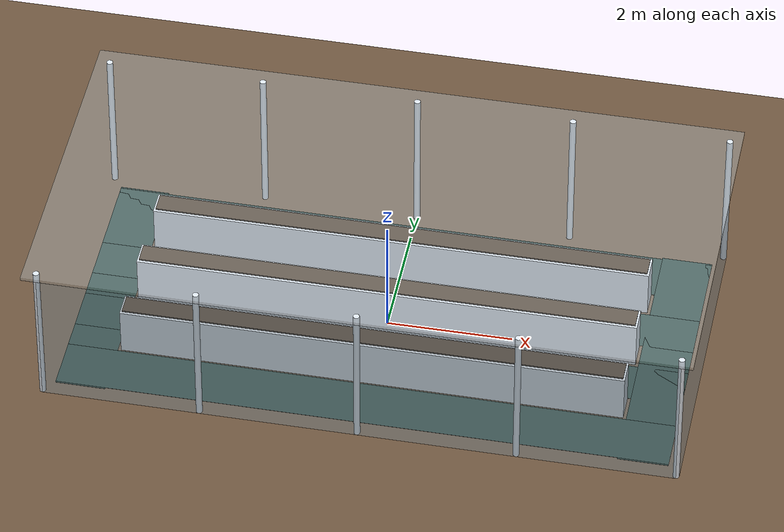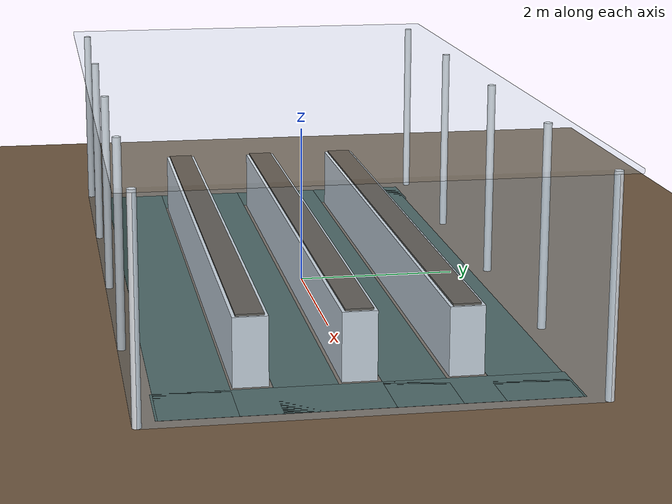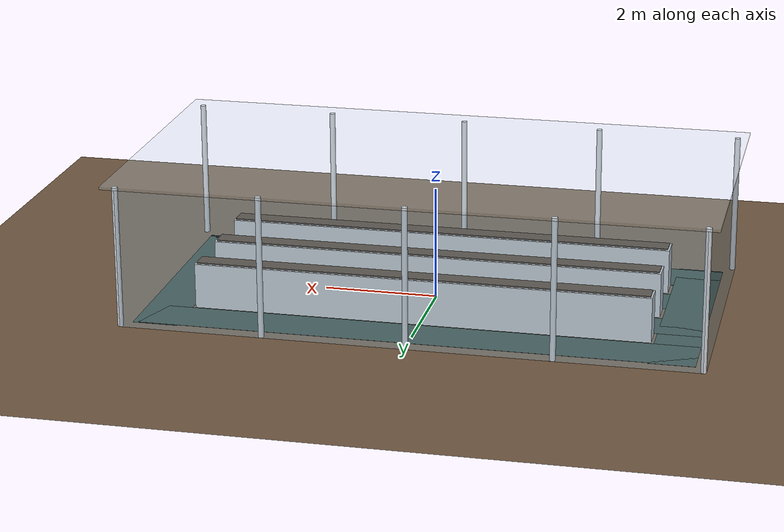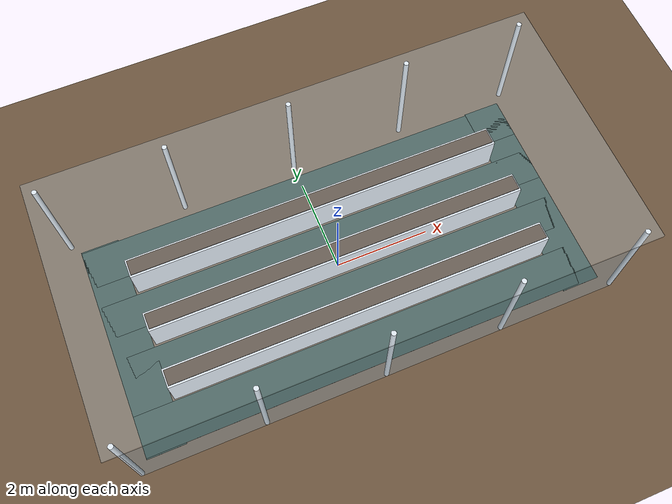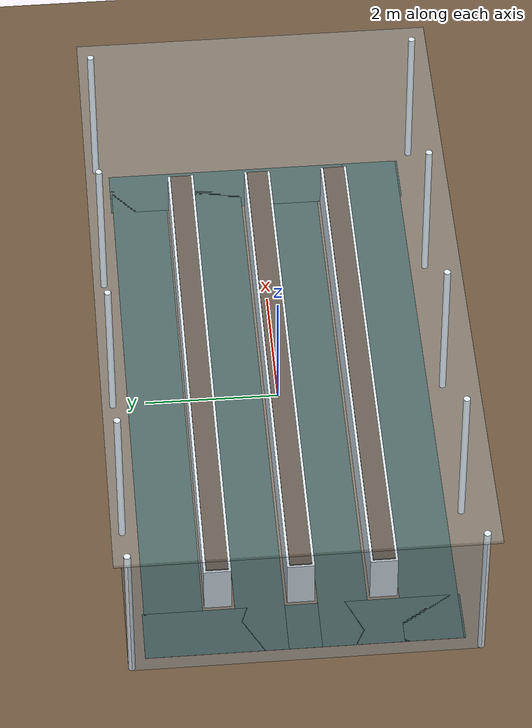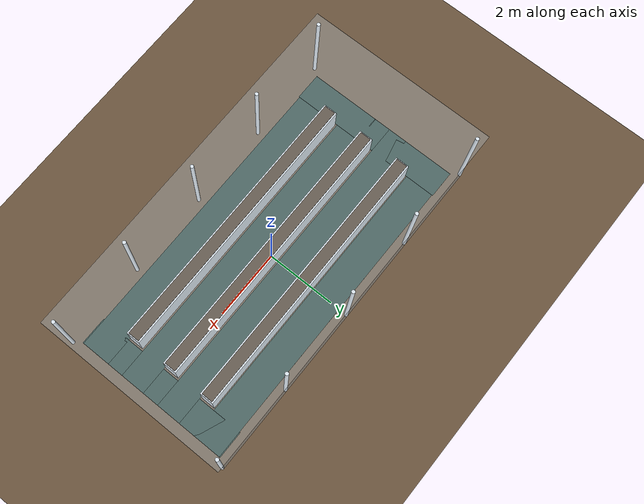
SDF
<sdf version="1.9">
 <world name="greenhouse">
  <physics name="1ms" type="ignored">
   <max_step_size>0.004</max_step_size>
   <real_time_factor>1.0</real_time_factor>
  </physics>
  <plugin filename="gz-sim-physics-system" name="gz::sim::systems::Physics"/>
  <plugin filename="gz-sim-user-commands-system" name="gz::sim::systems::UserCommands"/>
  <plugin filename="gz-sim-scene-broadcaster-system" name="gz::sim::systems::SceneBroadcaster"/>
  <plugin filename="gz-sim-sensors-system" name="gz::sim::systems::Sensors">
   <render_engine>ogre2</render_engine>
  </plugin>
  <scene><ambient>0.55 0.55 0.52 1</ambient><background>0.72 0.84 0.95 1</background><grid>false</grid></scene>
  <light type="directional" name="sun">
   <pose>0 0 10 0 0 0</pose>
   <diffuse>1.0 0.96 0.86 1</diffuse>
   <specular>0.4 0.38 0.3 1</specular>
   <direction>-0.3 0.2 -0.9</direction>
  </light>
  <light type="directional" name="fill">
   <cast_shadows>false</cast_shadows>
   <pose>0 0 10 0 0 0</pose>
   <diffuse>0.28 0.30 0.34 1</diffuse>
   <specular>0 0 0 1</specular>
   <direction>0.4 -0.3 -0.8</direction>
  </light>
  <model name="ground_plane">
   <static>true</static>
   <link name="link">
    <collision name="c"><geometry><plane><normal>0 0 1</normal><size>20 20</size></plane></geometry></collision>
    <visual name="v">
     <geometry><plane><normal>0 0 1</normal><size>20 20</size></plane></geometry>
     <material><ambient>0.30 0.24 0.18 1</ambient><diffuse>0.42 0.33 0.24 1</diffuse></material>
    </visual>
   </link>
  </model>
  <model name="wall_x_pos">
   <static>true</static>
   <pose>5.0 0.0 1.250 0 0 0</pose>
   <link name="link">
    <collision name="c"><geometry><box><size>0.1 5.0 2.5</size></box></geometry></collision>
    <visual name="v">
     <geometry><box><size>0.1 5.0 2.5</size></box></geometry>
     <transparency>0.62</transparency>
     <material>
      <ambient>0.62 0.74 0.80 1</ambient>
      <diffuse>0.68 0.80 0.88 1</diffuse>
      <specular>0.9 0.9 0.9 1</specular>
     </material>
    </visual>
   </link>
  </model>
  <model name="wall_x_neg">
   <static>true</static>
   <pose>-5.0 0.0 1.250 0 0 0</pose>
   <link name="link">
    <collision name="c"><geometry><box><size>0.1 5.0 2.5</size></box></geometry></collision>
    <visual name="v">
     <geometry><box><size>0.1 5.0 2.5</size></box></geometry>
     <transparency>0.62</transparency>
     <material>
      <ambient>0.62 0.74 0.80 1</ambient>
      <diffuse>0.68 0.80 0.88 1</diffuse>
      <specular>0.9 0.9 0.9 1</specular>
     </material>
    </visual>
   </link>
  </model>
  <model name="wall_y_pos">
   <static>true</static>
   <pose>0.0 2.5 1.250 0 0 0</pose>
   <link name="link">
    <collision name="c"><geometry><box><size>10.0 0.1 2.5</size></box></geometry></collision>
    <visual name="v">
     <geometry><box><size>10.0 0.1 2.5</size></box></geometry>
     <transparency>0.62</transparency>
     <material>
      <ambient>0.62 0.74 0.80 1</ambient>
      <diffuse>0.68 0.80 0.88 1</diffuse>
      <specular>0.9 0.9 0.9 1</specular>
     </material>
    </visual>
   </link>
  </model>
  <model name="wall_y_neg">
   <static>true</static>
   <pose>0.0 -2.5 1.250 0 0 0</pose>
   <link name="link">
    <collision name="c"><geometry><box><size>10.0 0.1 2.5</size></box></geometry></collision>
    <visual name="v">
     <geometry><box><size>10.0 0.1 2.5</size></box></geometry>
     <transparency>0.62</transparency>
     <material>
      <ambient>0.62 0.74 0.80 1</ambient>
      <diffuse>0.68 0.80 0.88 1</diffuse>
      <specular>0.9 0.9 0.9 1</specular>
     </material>
    </visual>
   </link>
  </model>
  <model name="post_n0">
   <static>true</static>
   <pose>-5.0 2.5 1.250 0 0 0</pose>
   <link name="link">
    <visual name="v">
     <geometry><cylinder><radius>0.05</radius><length>2.5</length></cylinder></geometry>
     <material><ambient>0.85 0.86 0.88 1</ambient><diffuse>0.92 0.93 0.95 1</diffuse></material>
    </visual>
   </link>
  </model>
  <model name="post_s0">
   <static>true</static>
   <pose>-5.0 -2.5 1.250 0 0 0</pose>
   <link name="link">
    <visual name="v">
     <geometry><cylinder><radius>0.05</radius><length>2.5</length></cylinder></geometry>
     <material><ambient>0.85 0.86 0.88 1</ambient><diffuse>0.92 0.93 0.95 1</diffuse></material>
    </visual>
   </link>
  </model>
  <model name="post_n1">
   <static>true</static>
   <pose>-2.5 2.5 1.250 0 0 0</pose>
   <link name="link">
    <visual name="v">
     <geometry><cylinder><radius>0.05</radius><length>2.5</length></cylinder></geometry>
     <material><ambient>0.85 0.86 0.88 1</ambient><diffuse>0.92 0.93 0.95 1</diffuse></material>
    </visual>
   </link>
  </model>
  <model name="post_s1">
   <static>true</static>
   <pose>-2.5 -2.5 1.250 0 0 0</pose>
   <link name="link">
    <visual name="v">
     <geometry><cylinder><radius>0.05</radius><length>2.5</length></cylinder></geometry>
     <material><ambient>0.85 0.86 0.88 1</ambient><diffuse>0.92 0.93 0.95 1</diffuse></material>
    </visual>
   </link>
  </model>
  <model name="post_n2">
   <static>true</static>
   <pose>0.0 2.5 1.250 0 0 0</pose>
   <link name="link">
    <visual name="v">
     <geometry><cylinder><radius>0.05</radius><length>2.5</length></cylinder></geometry>
     <material><ambient>0.85 0.86 0.88 1</ambient><diffuse>0.92 0.93 0.95 1</diffuse></material>
    </visual>
   </link>
  </model>
  <model name="post_s2">
   <static>true</static>
   <pose>0.0 -2.5 1.250 0 0 0</pose>
   <link name="link">
    <visual name="v">
     <geometry><cylinder><radius>0.05</radius><length>2.5</length></cylinder></geometry>
     <material><ambient>0.85 0.86 0.88 1</ambient><diffuse>0.92 0.93 0.95 1</diffuse></material>
    </visual>
   </link>
  </model>
  <model name="post_n3">
   <static>true</static>
   <pose>2.5 2.5 1.250 0 0 0</pose>
   <link name="link">
    <visual name="v">
     <geometry><cylinder><radius>0.05</radius><length>2.5</length></cylinder></geometry>
     <material><ambient>0.85 0.86 0.88 1</ambient><diffuse>0.92 0.93 0.95 1</diffuse></material>
    </visual>
   </link>
  </model>
  <model name="post_s3">
   <static>true</static>
   <pose>2.5 -2.5 1.250 0 0 0</pose>
   <link name="link">
    <visual name="v">
     <geometry><cylinder><radius>0.05</radius><length>2.5</length></cylinder></geometry>
     <material><ambient>0.85 0.86 0.88 1</ambient><diffuse>0.92 0.93 0.95 1</diffuse></material>
    </visual>
   </link>
  </model>
  <model name="post_n4">
   <static>true</static>
   <pose>5.0 2.5 1.250 0 0 0</pose>
   <link name="link">
    <visual name="v">
     <geometry><cylinder><radius>0.05</radius><length>2.5</length></cylinder></geometry>
     <material><ambient>0.85 0.86 0.88 1</ambient><diffuse>0.92 0.93 0.95 1</diffuse></material>
    </visual>
   </link>
  </model>
  <model name="post_s4">
   <static>true</static>
   <pose>5.0 -2.5 1.250 0 0 0</pose>
   <link name="link">
    <visual name="v">
     <geometry><cylinder><radius>0.05</radius><length>2.5</length></cylinder></geometry>
     <material><ambient>0.85 0.86 0.88 1</ambient><diffuse>0.92 0.93 0.95 1</diffuse></material>
    </visual>
   </link>
  </model>
  <model name="roof">
   <static>true</static>
   <pose>0 0 2.530 0 0 0</pose>
   <link name="link">
    <visual name="v">
     <geometry><box><size>10.4 5.4 0.05</size></box></geometry>
     <transparency>0.72</transparency>
     <material>
      <ambient>0.70 0.80 0.86 1</ambient>
      <diffuse>0.75 0.85 0.92 1</diffuse>
      <specular>1 1 1 1</specular>
     </material>
    </visual>
   </link>
  </model>
  <model name="aisle_pos">
   <static>true</static>
   <pose>0 0.6 0.001 0 0 0</pose>
   <link name="link">
    <visual name="v">
     <geometry><box><size>9.70 0.72 0.002</size></box></geometry>
     <material><ambient>0.10 0.16 0.14 1</ambient><diffuse>0.15 0.25 0.21 1</diffuse></material>
    </visual>
   </link>
  </model>
  <model name="aisle_neg">
   <static>true</static>
   <pose>0 -0.6 0.001 0 0 0</pose>
   <link name="link">
    <visual name="v">
     <geometry><box><size>9.70 0.72 0.002</size></box></geometry>
     <material><ambient>0.10 0.16 0.14 1</ambient><diffuse>0.15 0.25 0.21 1</diffuse></material>
    </visual>
   </link>
  </model>
  <model name="aisle_far_pos">
   <static>true</static>
   <pose>0 1.85 0.001 0 0 0</pose>
   <link name="link">
    <visual name="v">
     <geometry><box><size>9.70 0.85 0.002</size></box></geometry>
     <material><ambient>0.10 0.16 0.14 1</ambient><diffuse>0.15 0.25 0.21 1</diffuse></material>
    </visual>
   </link>
  </model>
  <model name="aisle_far_neg">
   <static>true</static>
   <pose>0 -1.85 0.001 0 0 0</pose>
   <link name="link">
    <visual name="v">
     <geometry><box><size>9.70 0.85 0.002</size></box></geometry>
     <material><ambient>0.10 0.16 0.14 1</ambient><diffuse>0.15 0.25 0.21 1</diffuse></material>
    </visual>
   </link>
  </model>
  <model name="lane_east">
   <static>true</static>
   <pose>4.45 0 0.001 0 0 0</pose>
   <link name="link">
    <visual name="v">
     <geometry><box><size>0.80 4.60 0.002</size></box></geometry>
     <material><ambient>0.10 0.16 0.14 1</ambient><diffuse>0.15 0.25 0.21 1</diffuse></material>
    </visual>
   </link>
  </model>
  <model name="lane_west">
   <static>true</static>
   <pose>-4.45 0 0.001 0 0 0</pose>
   <link name="link">
    <visual name="v">
     <geometry><box><size>0.80 4.60 0.002</size></box></geometry>
     <material><ambient>0.10 0.16 0.14 1</ambient><diffuse>0.15 0.25 0.21 1</diffuse></material>
    </visual>
   </link>
  </model>
  <model name="gutter_0">
   <static>true</static>
   <pose>0 -1.2 0 0 0 0</pose>
   <link name="link">
    <pose>0 0 0.400 0 0 0</pose>
    <collision name="c"><geometry><box><size>8.0 0.4 0.8</size></box></geometry></collision>
    <visual name="body">
     <geometry><box><size>8.0 0.4 0.8</size></box></geometry>
     <material>
      <ambient>0.80 0.81 0.83 1</ambient>
      <diffuse>0.92 0.93 0.95 1</diffuse>
      <specular>0.3 0.3 0.3 1</specular>
     </material>
    </visual>
    <visual name="soil">
     <pose>0 0 0.411 0 0 0</pose>
     <geometry><box><size>7.94 0.32 0.025</size></box></geometry>
     <material><ambient>0.20 0.13 0.08 1</ambient><diffuse>0.28 0.19 0.11 1</diffuse></material>
    </visual>
   </link>
  </model>
  <model name="gutter_1">
   <static>true</static>
   <link name="link">
    <pose>0 0 0.400 0 0 0</pose>
    <collision name="c"><geometry><box><size>8.0 0.4 0.8</size></box></geometry></collision>
    <visual name="body">
     <geometry><box><size>8.0 0.4 0.8</size></box></geometry>
     <material>
      <ambient>0.80 0.81 0.83 1</ambient>
      <diffuse>0.92 0.93 0.95 1</diffuse>
      <specular>0.3 0.3 0.3 1</specular>
     </material>
    </visual>
    <visual name="soil">
     <pose>0 0 0.411 0 0 0</pose>
     <geometry><box><size>7.94 0.32 0.025</size></box></geometry>
     <material><ambient>0.20 0.13 0.08 1</ambient><diffuse>0.28 0.19 0.11 1</diffuse></material>
    </visual>
   </link>
  </model>
  <model name="gutter_2">
   <static>true</static>
   <pose>0 1.2 0 0 0 0</pose>
   <link name="link">
    <pose>0 0 0.400 0 0 0</pose>
    <collision name="c"><geometry><box><size>8.0 0.4 0.8</size></box></geometry></collision>
    <visual name="body">
     <geometry><box><size>8.0 0.4 0.8</size></box></geometry>
     <material>
      <ambient>0.80 0.81 0.83 1</ambient>
      <diffuse>0.92 0.93 0.95 1</diffuse>
      <specular>0.3 0.3 0.3 1</specular>
     </material>
    </visual>
    <visual name="soil">
     <pose>0 0 0.411 0 0 0</pose>
     <geometry><box><size>7.94 0.32 0.025</size></box></geometry>
     <material><ambient>0.20 0.13 0.08 1</ambient><diffuse>0.28 0.19 0.11 1</diffuse></material>
    </visual>
   </link>
  </model>
 </world>
</sdf>
